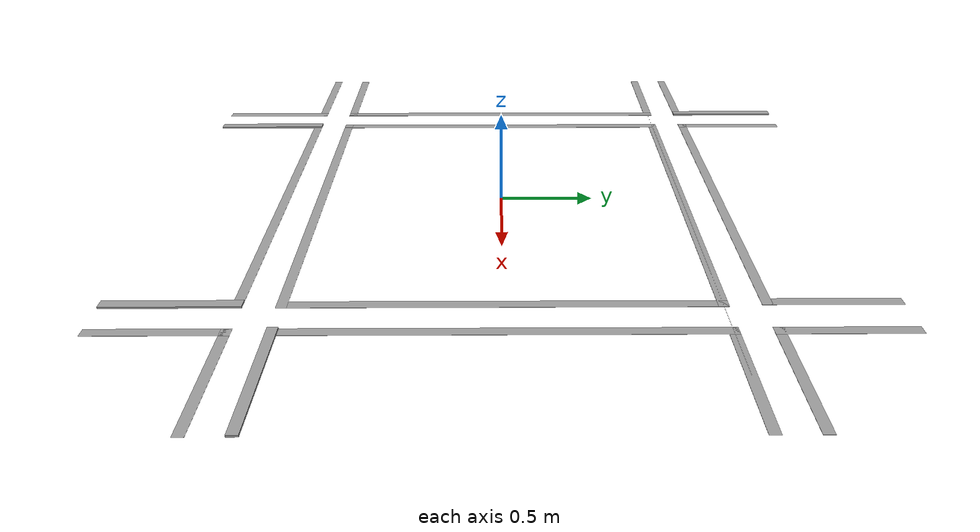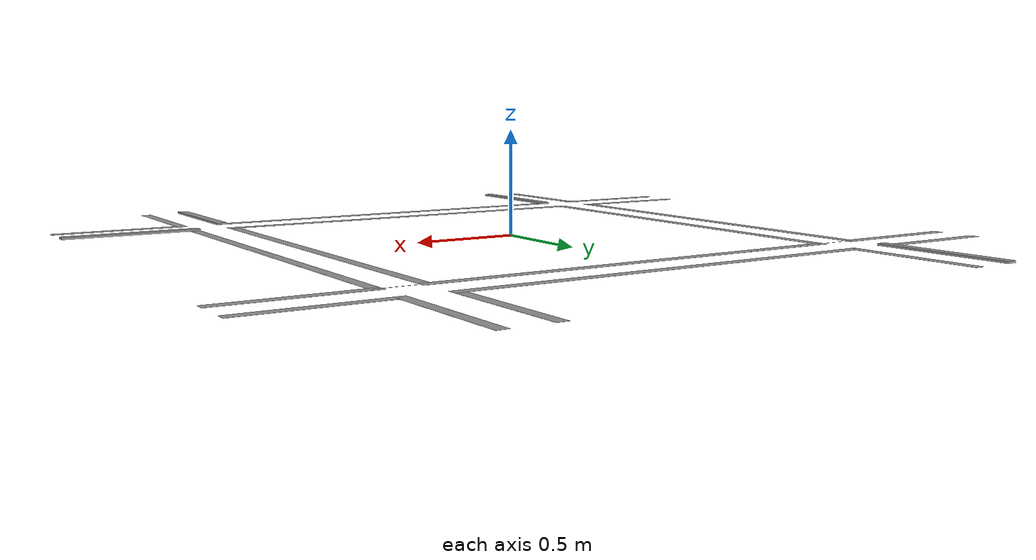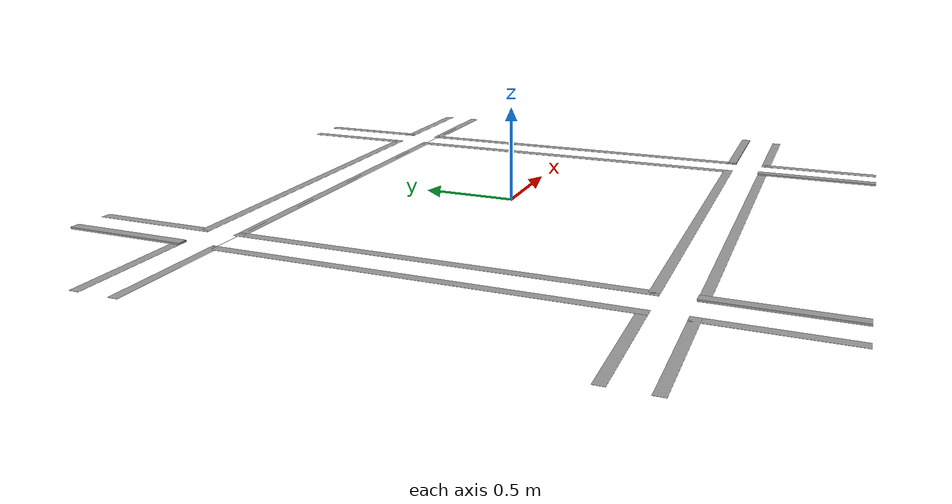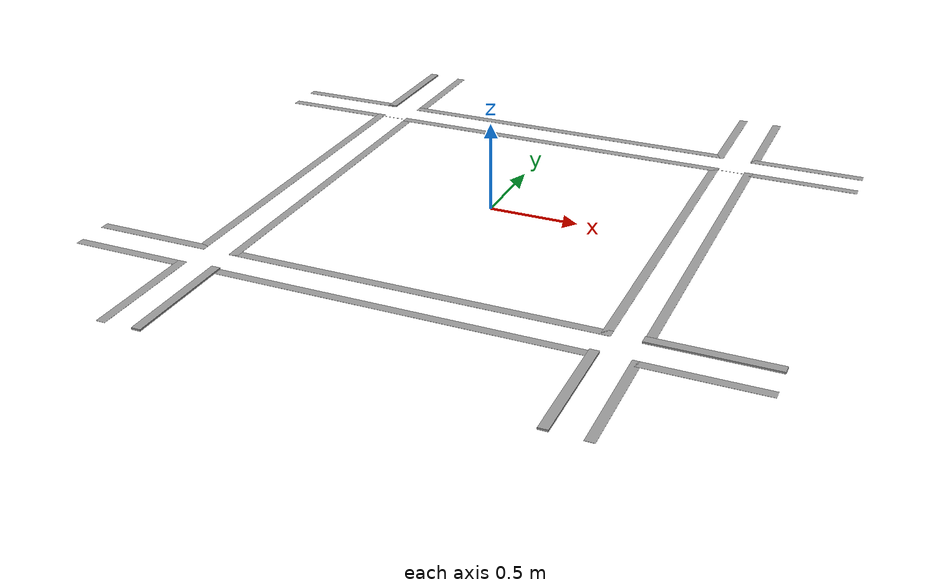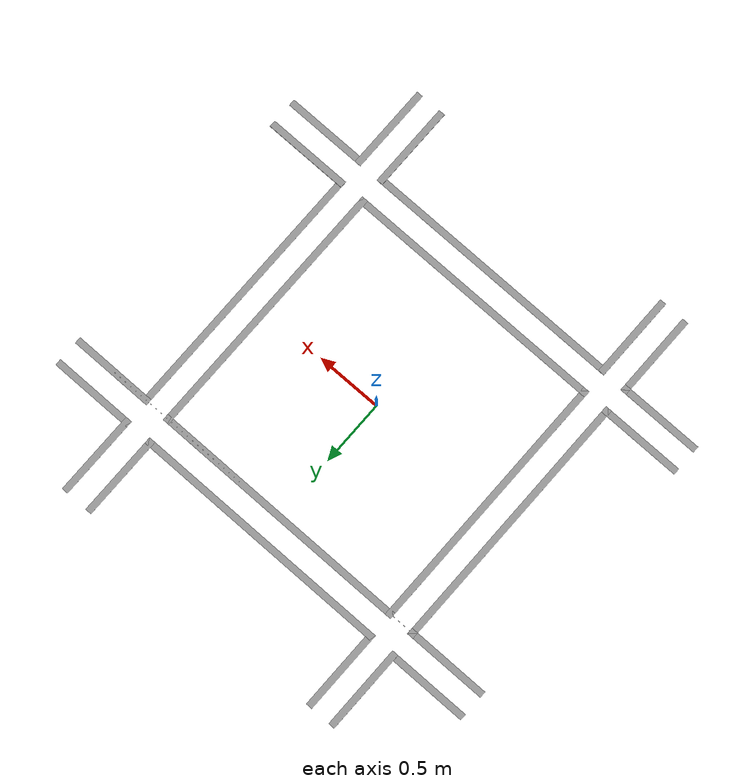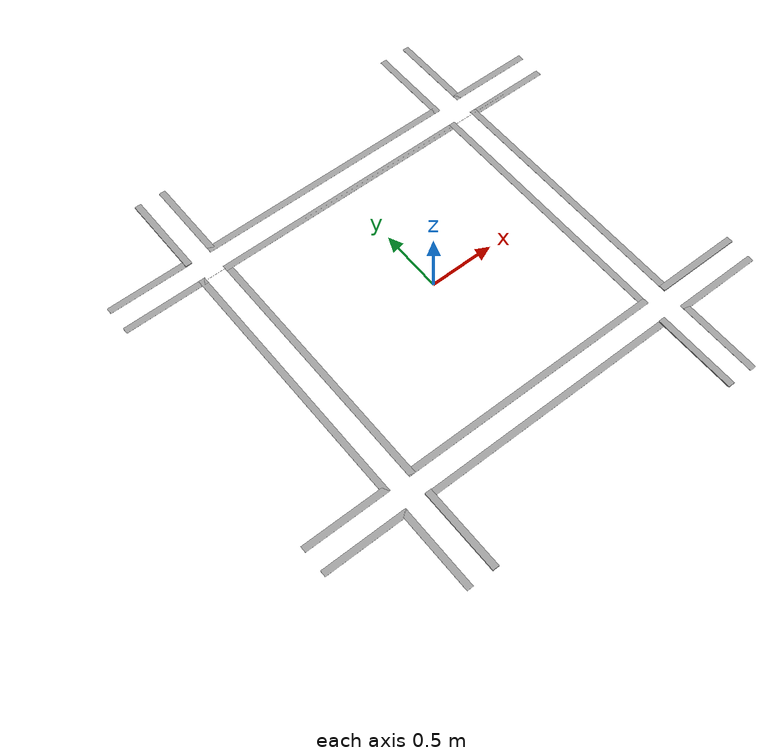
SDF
<?xml version='1.0'?>
<sdf version='1.6'>
  <model name='realsharp'>
    <pose frame=''>0 0 0 0 -0 0</pose>
    <link name='Wall_0'>
      <collision name='Wall_0_Collision'>
        <geometry>
          <box>
            <size>2.7 0.001 0.001</size>
          </box>
        </geometry>
        <pose frame=''>0 0 0.0005 0 -0 0</pose>
      </collision>
      <visual name='Wall_0_Visual'>
        <pose frame=''>0 0 0.0005 0 -0 0</pose>
        <geometry>
          <box>
            <size>2.7 0.001 0.001</size>
          </box>
        </geometry>
        <material>
          <script>
            <uri>file://media/materials/scripts/gazebo.material</uri>
            <name>Gazebo/Grey</name>
          </script>
          <ambient>1 1 1 1</ambient>
        </material>
        <meta>
          <layer>0</layer>
        </meta>
      </visual>
      <pose frame=''>0.15 1 0 0 -0 0</pose>
    </link>
    <link name='Wall_10'>
      <collision name='Wall_10_Collision'>
        <geometry>
          <box>
            <size>2.05 0.05 0.001</size>
          </box>
        </geometry>
        <pose frame=''>0 0 0.0005 0 -0 0</pose>
      </collision>
      <visual name='Wall_10_Visual'>
        <pose frame=''>0 0 0.0005 0 -0 0</pose>
        <geometry>
          <box>
            <size>2.05 0.05 0.001</size>
          </box>
        </geometry>
        <material>
          <script>
            <uri>file://media/materials/scripts/gazebo.material</uri>
            <name>Gazebo/Grey</name>
          </script>
          <ambient>1 1 1 1</ambient>
        </material>
        <meta>
          <layer>0</layer>
        </meta>
      </visual>
      <pose frame=''>0 -1 0 0 -0 0</pose>
    </link>
    <link name='Wall_14'>
      <collision name='Wall_14_Collision'>
        <geometry>
          <box>
            <size>2.05 0.05 0.001</size>
          </box>
        </geometry>
        <pose frame=''>0 0 0.0005 0 -0 0</pose>
      </collision>
      <visual name='Wall_14_Visual'>
        <pose frame=''>0 0 0.0005 0 -0 0</pose>
        <geometry>
          <box>
            <size>2.05 0.05 0.001</size>
          </box>
        </geometry>
        <material>
          <script>
            <uri>file://media/materials/scripts/gazebo.material</uri>
            <name>Gazebo/Grey</name>
          </script>
          <ambient>1 1 1 1</ambient>
        </material>
        <meta>
          <layer>0</layer>
        </meta>
      </visual>
      <pose frame=''>-1.2 0 0 0 -0 -1.5708</pose>
    </link>
    <link name='Wall_17'>
      <collision name='Wall_17_Collision'>
        <geometry>
          <box>
            <size>2.037 0.05 0.001</size>
          </box>
        </geometry>
        <pose frame=''>0 0 0.0005 0 -0 0</pose>
      </collision>
      <visual name='Wall_17_Visual'>
        <pose frame=''>0 0 0.0005 0 -0 0</pose>
        <geometry>
          <box>
            <size>2.037 0.05 0.001</size>
          </box>
        </geometry>
        <material>
          <script>
            <uri>file://media/materials/scripts/gazebo.material</uri>
            <name>Gazebo/Grey</name>
          </script>
          <ambient>1 1 1 1</ambient>
        </material>
        <meta>
          <layer>0</layer>
        </meta>
      </visual>
      <pose frame=''>-0.0065 1.2 0 0 -0 0</pose>
    </link>
    <link name='Wall_19'>
      <collision name='Wall_19_Collision'>
        <geometry>
          <box>
            <size>2.05 0.05 0.001</size>
          </box>
        </geometry>
        <pose frame=''>0 0 0.0005 0 -0 0</pose>
      </collision>
      <visual name='Wall_19_Visual'>
        <pose frame=''>0 0 0.0005 0 -0 0</pose>
        <geometry>
          <box>
            <size>2.05 0.05 0.001</size>
          </box>
        </geometry>
        <material>
          <script>
            <uri>file://media/materials/scripts/gazebo.material</uri>
            <name>Gazebo/Grey</name>
          </script>
          <ambient>1 1 1 1</ambient>
        </material>
        <meta>
          <layer>0</layer>
        </meta>
      </visual>
      <pose frame=''>1.2 0 0 0 -0 -1.5708</pose>
    </link>
    <link name='Wall_21'>
      <collision name='Wall_21_Collision'>
        <geometry>
          <box>
            <size>2.05 0.05 0.001</size>
          </box>
        </geometry>
        <pose frame=''>0 0 0.0005 0 -0 0</pose>
      </collision>
      <visual name='Wall_21_Visual'>
        <pose frame=''>0 0 0.0005 0 -0 0</pose>
        <geometry>
          <box>
            <size>2.05 0.05 0.001</size>
          </box>
        </geometry>
        <material>
          <script>
            <uri>file://media/materials/scripts/gazebo.material</uri>
            <name>Gazebo/Grey</name>
          </script>
          <ambient>1 1 1 1</ambient>
        </material>
        <meta>
          <layer>0</layer>
        </meta>
      </visual>
      <pose frame=''>0 -1.2 0 0 -0 0</pose>
    </link>
    <link name='Wall_23'>
      <collision name='Wall_23_Collision'>
        <geometry>
          <box>
            <size>0.65 0.05 0.001</size>
          </box>
        </geometry>
        <pose frame=''>0 0 0.0005 0 -0 0</pose>
      </collision>
      <visual name='Wall_23_Visual'>
        <pose frame=''>0 0 0.0005 0 -0 0</pose>
        <geometry>
          <box>
            <size>0.65 0.05 0.001</size>
          </box>
        </geometry>
        <material>
          <script>
            <uri>file://media/materials/scripts/gazebo.material</uri>
            <name>Gazebo/Grey</name>
          </script>
          <ambient>1 1 1 1</ambient>
        </material>
        <meta>
          <layer>0</layer>
        </meta>
      </visual>
      <pose frame=''>-1 1.5 0 0 -0 1.5708</pose>
    </link>
    <link name='Wall_26'>
      <collision name='Wall_26_Collision'>
        <geometry>
          <box>
            <size>0.65 0.05 0.001</size>
          </box>
        </geometry>
        <pose frame=''>0 0 0.0005 0 -0 0</pose>
      </collision>
      <visual name='Wall_26_Visual'>
        <pose frame=''>0 0 0.0005 0 -0 0</pose>
        <geometry>
          <box>
            <size>0.65 0.05 0.001</size>
          </box>
        </geometry>
        <material>
          <script>
            <uri>file://media/materials/scripts/gazebo.material</uri>
            <name>Gazebo/Grey</name>
          </script>
          <ambient>1 1 1 1</ambient>
        </material>
        <meta>
          <layer>0</layer>
        </meta>
      </visual>
      <pose frame=''>0.987 1.5 0 0 -0 1.5708</pose>
    </link>
    <link name='Wall_30'>
      <collision name='Wall_30_Collision'>
        <geometry>
          <box>
            <size>0.65 0.05 0.01</size>
          </box>
        </geometry>
        <pose frame=''>0 0 0.005 0 -0 0</pose>
      </collision>
      <visual name='Wall_30_Visual'>
        <pose frame=''>0 0 0.005 0 -0 0</pose>
        <geometry>
          <box>
            <size>0.65 0.05 0.01</size>
          </box>
        </geometry>
        <material>
          <script>
            <uri>file://media/materials/scripts/gazebo.material</uri>
            <name>Gazebo/Grey</name>
          </script>
          <ambient>1 1 1 1</ambient>
        </material>
        <meta>
          <layer>0</layer>
        </meta>
      </visual>
      <pose frame=''>1 -1.5 0 0 -0 -1.5708</pose>
    </link>
    <link name='Wall_32'>
      <collision name='Wall_32_Collision'>
        <geometry>
          <box>
            <size>0.65 0.05 0.01</size>
          </box>
        </geometry>
        <pose frame=''>0 0 0.005 0 -0 0</pose>
      </collision>
      <visual name='Wall_32_Visual'>
        <pose frame=''>0 0 0.005 0 -0 0</pose>
        <geometry>
          <box>
            <size>0.65 0.05 0.01</size>
          </box>
        </geometry>
        <material>
          <script>
            <uri>file://media/materials/scripts/gazebo.material</uri>
            <name>Gazebo/Grey</name>
          </script>
          <ambient>1 1 1 1</ambient>
        </material>
        <meta>
          <layer>0</layer>
        </meta>
      </visual>
      <pose frame=''>-1 -1.5 0 0 -0 -1.5708</pose>
    </link>
    <link name='Wall_35'>
      <collision name='Wall_35_Collision'>
        <geometry>
          <box>
            <size>0.65 0.05 0.001</size>
          </box>
        </geometry>
        <pose frame=''>0 0 0.0005 0 -0 0</pose>
      </collision>
      <visual name='Wall_35_Visual'>
        <pose frame=''>0 0 0.0005 0 -0 0</pose>
        <geometry>
          <box>
            <size>0.65 0.05 0.001</size>
          </box>
        </geometry>
        <material>
          <script>
            <uri>file://media/materials/scripts/gazebo.material</uri>
            <name>Gazebo/Grey</name>
          </script>
          <ambient>1 1 1 1</ambient>
        </material>
        <meta>
          <layer>0</layer>
        </meta>
      </visual>
      <pose frame=''>-1.5 -1 0 0 -0 3.14159</pose>
    </link>
    <link name='Wall_37'>
      <collision name='Wall_37_Collision'>
        <geometry>
          <box>
            <size>0.65 0.05 0.001</size>
          </box>
        </geometry>
        <pose frame=''>0 0 0.0005 0 -0 0</pose>
      </collision>
      <visual name='Wall_37_Visual'>
        <pose frame=''>0 0 0.0005 0 -0 0</pose>
        <geometry>
          <box>
            <size>0.65 0.05 0.001</size>
          </box>
        </geometry>
        <material>
          <script>
            <uri>file://media/materials/scripts/gazebo.material</uri>
            <name>Gazebo/Grey</name>
          </script>
          <ambient>1 1 1 1</ambient>
        </material>
        <meta>
          <layer>0</layer>
        </meta>
      </visual>
      <pose frame=''>-1.5 1 0 0 -0 3.14159</pose>
    </link>
    <link name='Wall_39'>
      <collision name='Wall_39_Collision'>
        <geometry>
          <box>
            <size>0.65 0.05 0.001</size>
          </box>
        </geometry>
        <pose frame=''>0 0 0.0005 0 -0 0</pose>
      </collision>
      <visual name='Wall_39_Visual'>
        <pose frame=''>0 0 0.0005 0 -0 0</pose>
        <geometry>
          <box>
            <size>0.65 0.05 0.001</size>
          </box>
        </geometry>
        <material>
          <script>
            <uri>file://media/materials/scripts/gazebo.material</uri>
            <name>Gazebo/Grey</name>
          </script>
          <ambient>1 1 1 1</ambient>
        </material>
        <meta>
          <layer>0</layer>
        </meta>
      </visual>
      <pose frame=''>1.5 1 0 0 -0 0</pose>
    </link>
    <link name='Wall_4'>
      <collision name='Wall_4_Collision'>
        <geometry>
          <box>
            <size>2.05 0.05 0.001</size>
          </box>
        </geometry>
        <pose frame=''>0 0 0.0005 0 -0 0</pose>
      </collision>
      <visual name='Wall_4_Visual'>
        <pose frame=''>0 0 0.0005 0 -0 0</pose>
        <geometry>
          <box>
            <size>2.05 0.05 0.001</size>
          </box>
        </geometry>
        <material>
          <script>
            <uri>file://media/materials/scripts/gazebo.material</uri>
            <name>Gazebo/Grey</name>
          </script>
          <ambient>1 1 1 1</ambient>
        </material>
        <meta>
          <layer>0</layer>
        </meta>
      </visual>
      <pose frame=''>0 1 0 0 -0 0</pose>
    </link>
    <link name='Wall_42'>
      <collision name='Wall_42_Collision'>
        <geometry>
          <box>
            <size>0.65 0.05 0.01</size>
          </box>
        </geometry>
        <pose frame=''>0 0 0.005 0 -0 0</pose>
      </collision>
      <visual name='Wall_42_Visual'>
        <pose frame=''>0 0 0.005 0 -0 0</pose>
        <geometry>
          <box>
            <size>0.65 0.05 0.01</size>
          </box>
        </geometry>
        <material>
          <script>
            <uri>file://media/materials/scripts/gazebo.material</uri>
            <name>Gazebo/Grey</name>
          </script>
          <ambient>1 1 1 1</ambient>
        </material>
        <meta>
          <layer>0</layer>
        </meta>
      </visual>
      <pose frame=''>1.5 -1 0 0 -0 0</pose>
    </link>
    <link name='Wall_45'>
      <collision name='Wall_45_Collision'>
        <geometry>
          <box>
            <size>0.65 0.05 0.01</size>
          </box>
        </geometry>
        <pose frame=''>0 0 0.005 0 -0 0</pose>
      </collision>
      <visual name='Wall_45_Visual'>
        <pose frame=''>0 0 0.005 0 -0 0</pose>
        <geometry>
          <box>
            <size>0.65 0.05 0.01</size>
          </box>
        </geometry>
        <material>
          <script>
            <uri>file://media/materials/scripts/gazebo.material</uri>
            <name>Gazebo/Grey</name>
          </script>
          <ambient>1 1 1 1</ambient>
        </material>
        <meta>
          <layer>0</layer>
        </meta>
      </visual>
      <pose frame=''>-1.2 1.5 0 0 -0 1.5708</pose>
    </link>
    <link name='Wall_47'>
      <collision name='Wall_47_Collision'>
        <geometry>
          <box>
            <size>0.65 0.05 0.001</size>
          </box>
        </geometry>
        <pose frame=''>0 0 0.0005 0 -0 0</pose>
      </collision>
      <visual name='Wall_47_Visual'>
        <pose frame=''>0 0 0.0005 0 -0 0</pose>
        <geometry>
          <box>
            <size>0.65 0.05 0.001</size>
          </box>
        </geometry>
        <material>
          <script>
            <uri>file://media/materials/scripts/gazebo.material</uri>
            <name>Gazebo/Grey</name>
          </script>
          <ambient>1 1 1 1</ambient>
        </material>
        <meta>
          <layer>0</layer>
        </meta>
      </visual>
      <pose frame=''>-1.5 1.2 0 0 -0 3.14159</pose>
    </link>
    <link name='Wall_51'>
      <collision name='Wall_51_Collision'>
        <geometry>
          <box>
            <size>0.65 0.05 0.001</size>
          </box>
        </geometry>
        <pose frame=''>0 0 0.0005 0 -0 0</pose>
      </collision>
      <visual name='Wall_51_Visual'>
        <pose frame=''>0 0 0.0005 0 -0 0</pose>
        <geometry>
          <box>
            <size>0.65 0.05 0.001</size>
          </box>
        </geometry>
        <material>
          <script>
            <uri>file://media/materials/scripts/gazebo.material</uri>
            <name>Gazebo/Grey</name>
          </script>
          <ambient>1 1 1 1</ambient>
        </material>
        <meta>
          <layer>0</layer>
        </meta>
      </visual>
      <pose frame=''>-1.2 -1.5 0 0 -0 -1.5708</pose>
    </link>
    <link name='Wall_53'>
      <collision name='Wall_53_Collision'>
        <geometry>
          <box>
            <size>0.65 0.05 0.001</size>
          </box>
        </geometry>
        <pose frame=''>0 0 0.0005 0 -0 0</pose>
      </collision>
      <visual name='Wall_53_Visual'>
        <pose frame=''>0 0 0.0005 0 -0 0</pose>
        <geometry>
          <box>
            <size>0.65 0.05 0.001</size>
          </box>
        </geometry>
        <material>
          <script>
            <uri>file://media/materials/scripts/gazebo.material</uri>
            <name>Gazebo/Grey</name>
          </script>
          <ambient>1 1 1 1</ambient>
        </material>
        <meta>
          <layer>0</layer>
        </meta>
      </visual>
      <pose frame=''>-1.5 -1.2 0 0 -0 3.14159</pose>
    </link>
    <link name='Wall_55'>
      <collision name='Wall_55_Collision'>
        <geometry>
          <box>
            <size>0.65 0.05 0.001</size>
          </box>
        </geometry>
        <pose frame=''>0 0 0.0005 0 -0 0</pose>
      </collision>
      <visual name='Wall_55_Visual'>
        <pose frame=''>0 0 0.0005 0 -0 0</pose>
        <geometry>
          <box>
            <size>0.65 0.05 0.001</size>
          </box>
        </geometry>
        <material>
          <script>
            <uri>file://media/materials/scripts/gazebo.material</uri>
            <name>Gazebo/Grey</name>
          </script>
          <ambient>1 1 1 1</ambient>
        </material>
        <meta>
          <layer>0</layer>
        </meta>
      </visual>
      <pose frame=''>1.2 1.5 0 0 -0 1.5708</pose>
    </link>
    <link name='Wall_57'>
      <collision name='Wall_57_Collision'>
        <geometry>
          <box>
            <size>0.65 0.05 0.001</size>
          </box>
        </geometry>
        <pose frame=''>0 0 0.0005 0 -0 0</pose>
      </collision>
      <visual name='Wall_57_Visual'>
        <pose frame=''>0 0 0.0005 0 -0 0</pose>
        <geometry>
          <box>
            <size>0.65 0.05 0.001</size>
          </box>
        </geometry>
        <material>
          <script>
            <uri>file://media/materials/scripts/gazebo.material</uri>
            <name>Gazebo/Grey</name>
          </script>
          <ambient>1 1 1 1</ambient>
        </material>
        <meta>
          <layer>0</layer>
        </meta>
      </visual>
      <pose frame=''>1.5 1.2 0 0 -0 0</pose>
    </link>
    <link name='Wall_59'>
      <collision name='Wall_59_Collision'>
        <geometry>
          <box>
            <size>0.65 0.05 0.001</size>
          </box>
        </geometry>
        <pose frame=''>0 0 0.0005 0 -0 0</pose>
      </collision>
      <visual name='Wall_59_Visual'>
        <pose frame=''>0 0 0.0005 0 -0 0</pose>
        <geometry>
          <box>
            <size>0.65 0.05 0.001</size>
          </box>
        </geometry>
        <material>
          <script>
            <uri>file://media/materials/scripts/gazebo.material</uri>
            <name>Gazebo/Grey</name>
          </script>
          <ambient>1 1 1 1</ambient>
        </material>
        <meta>
          <layer>0</layer>
        </meta>
      </visual>
      <pose frame=''>1.5 -1.2 0 0 -0 0</pose>
    </link>
    <link name='Wall_6'>
      <collision name='Wall_6_Collision'>
        <geometry>
          <box>
            <size>2.05 0.05 0.001</size>
          </box>
        </geometry>
        <pose frame=''>0 0 0.0005 0 -0 0</pose>
      </collision>
      <visual name='Wall_6_Visual'>
        <pose frame=''>0 0 0.0005 0 -0 0</pose>
        <geometry>
          <box>
            <size>2.05 0.05 0.001</size>
          </box>
        </geometry>
        <material>
          <script>
            <uri>file://media/materials/scripts/gazebo.material</uri>
            <name>Gazebo/Grey</name>
          </script>
          <ambient>1 1 1 1</ambient>
        </material>
        <meta>
          <layer>0</layer>
        </meta>
      </visual>
      <pose frame=''>-1 0 0 0 -0 -1.5708</pose>
    </link>
    <link name='Wall_61'>
      <collision name='Wall_61_Collision'>
        <geometry>
          <box>
            <size>0.65 0.05 0.001</size>
          </box>
        </geometry>
        <pose frame=''>0 0 0.0005 0 -0 0</pose>
      </collision>
      <visual name='Wall_61_Visual'>
        <pose frame=''>0 0 0.0005 0 -0 0</pose>
        <geometry>
          <box>
            <size>0.65 0.05 0.001</size>
          </box>
        </geometry>
        <material>
          <script>
            <uri>file://media/materials/scripts/gazebo.material</uri>
            <name>Gazebo/Grey</name>
          </script>
          <ambient>1 1 1 1</ambient>
        </material>
        <meta>
          <layer>0</layer>
        </meta>
      </visual>
      <pose frame=''>1.2 -1.5 0 0 -0 -1.5708</pose>
    </link>
    <link name='Wall_8'>
      <collision name='Wall_8_Collision'>
        <geometry>
          <box>
            <size>2.05 0.05 0.001</size>
          </box>
        </geometry>
        <pose frame=''>0 0 0.0005 0 -0 0</pose>
      </collision>
      <visual name='Wall_8_Visual'>
        <pose frame=''>0 0 0.0005 0 -0 0</pose>
        <geometry>
          <box>
            <size>2.05 0.05 0.001</size>
          </box>
        </geometry>
        <material>
          <script>
            <uri>file://media/materials/scripts/gazebo.material</uri>
            <name>Gazebo/Grey</name>
          </script>
          <ambient>1 1 1 1</ambient>
        </material>
        <meta>
          <layer>0</layer>
        </meta>
      </visual>
      <pose frame=''>1 0 0 0 -0 -1.5708</pose>
    </link>
    <static>1</static>
  </model>
</sdf>
